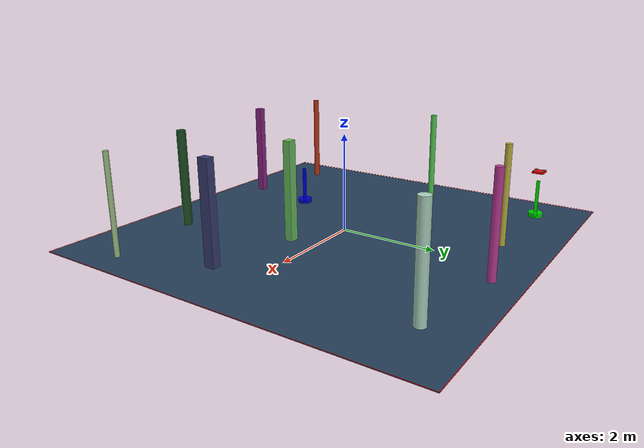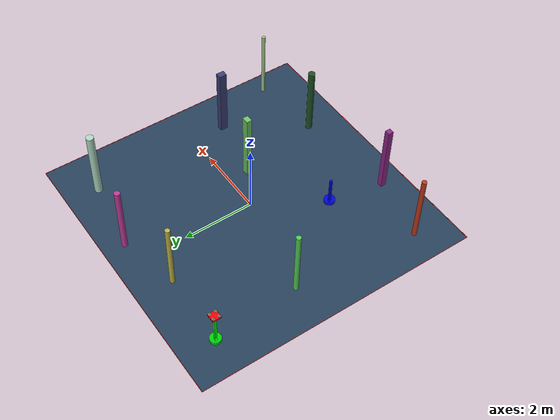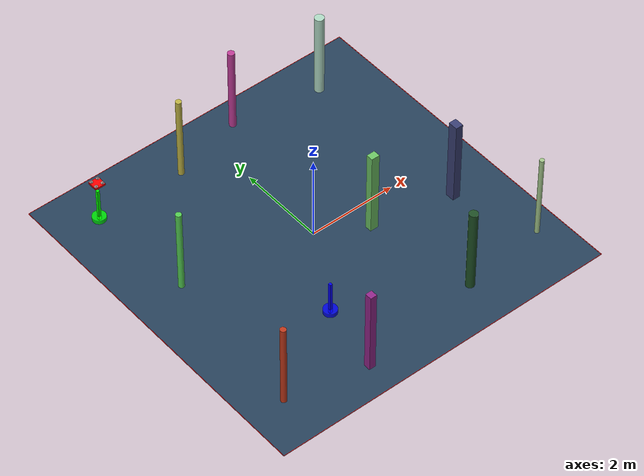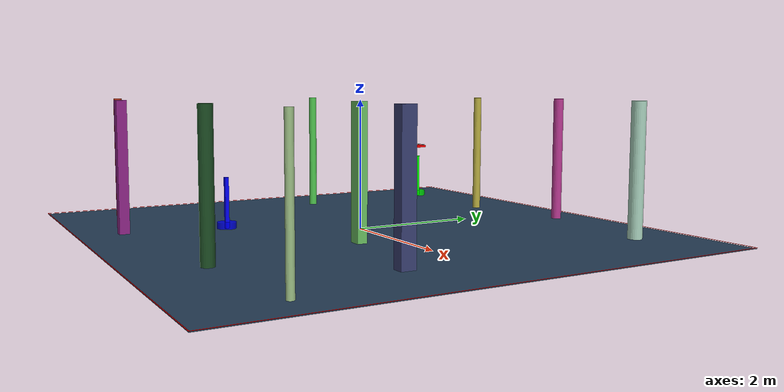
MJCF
<?xml version='1.0' encoding='utf-8'?>
<mujoco model="complex_uav_env">
  <compiler angle="degree" coordinate="local" inertiafromgeom="true" />
  <option integrator="RK4" timestep="0.01" />

  <visual>
    <headlight diffuse="0.6 0.6 0.6" ambient="0.3 0.3 0.3" />
    <rgba haze="0.15 0.25 0.35 1" />
    <global offwidth="2560" offheight="1440" />
  </visual>

  <asset>
    <texture type="skybox" builtin="gradient" rgb1="0.3 0.5 0.7" rgb2="0 0 0" width="512" height="3072" />
    <texture name="grid" type="2d" builtin="checker" rgb1="0.1 0.2 0.3" rgb2="0.2 0.3 0.4" width="512" height="512" />
    <material name="grid" texture="grid" texrepeat="1 1" />
  </asset>

  <worldbody>

    <geom name="ground" type="plane" size="4.0 4.0 0.1" material="grid" />
    <light name="light1" pos="0 0 4" dir="0 0 -1" diffuse="1 1 1" />

    <geom name="start_marker" type="cylinder" size="0.15 0.05" pos="-3.0 3.0 0.05" rgba="0 1 0 0.8" />
    <geom name="start_pole" type="box" size="0.03 0.03 0.4" pos="-3.0 3.0 0.4" rgba="0 1 0 1" />

    <geom name="goal_marker" type="cylinder" size="0.15 0.05" pos="-1.0582167565484162 -1.7956519742017112 0.05" rgba="0 0 1 0.8" />
    <geom name="goal_pole" type="box" size="0.03 0.03 0.4" pos="-1.0582167565484162 -1.7956519742017112 0.4" rgba="0 0 1 1" />

    <body name="chassis" pos="-3.0 3.0 1.0">
      <joint type="free" name="root" />
      <geom type="box" size="0.12 0.12 0.02" rgba="1.0 0.0 0.0 1.0" mass="0.8" />

      <geom type="box" size="0.08 0.01 0.005" pos="0 0 0.01" rgba="0.3 0.3 0.3 1" />
      <geom type="box" size="0.01 0.08 0.005" pos="0 0 0.01" rgba="0.3 0.3 0.3 1" />

      <geom type="cylinder" size="0.015 0.02" pos="0.08 0.08 0.015" rgba="0.2 0.2 0.2 1" />
      <geom type="cylinder" size="0.015 0.02" pos="-0.08 0.08 0.015" rgba="0.2 0.2 0.2 1" />
      <geom type="cylinder" size="0.015 0.02" pos="0.08 -0.08 0.015" rgba="0.2 0.2 0.2 1" />
      <geom type="cylinder" size="0.015 0.02" pos="-0.08 -0.08 0.015" rgba="0.2 0.2 0.2 1" />

      <geom type="cylinder" size="0.04 0.002" pos="0.08 0.08 0.035" rgba="0.7 0.7 0.7 0.8" />
      <geom type="cylinder" size="0.04 0.002" pos="-0.08 0.08 0.035" rgba="0.7 0.7 0.7 0.8" />
      <geom type="cylinder" size="0.04 0.002" pos="0.08 -0.08 0.035" rgba="0.7 0.7 0.7 0.8" />
      <geom type="cylinder" size="0.04 0.002" pos="-0.08 -0.08 0.035" rgba="0.7 0.7 0.7 0.8" />

      <site name="motor1" pos="0.08 0.08 0" size="0.01" />
      <site name="motor2" pos="-0.08 0.08 0" size="0.01" />
      <site name="motor3" pos="0.08 -0.08 0" size="0.01" />
      <site name="motor4" pos="-0.08 -0.08 0" size="0.01" />
    </body>
    <geom name="test_obs_0" type="cylinder" size="0.10520403030689995 1.0" pos="2.6866669671168966 3.072280093023374 1.0" rgba="0.6818552675234316 0.8443836268394398 0.7623144507375996 1.0" />
    <geom name="test_obs_1" type="box" size="0.0857727553426823 0.10772895684457887 1.0" pos="2.8104842231405978 -0.9476814493448804 1.0" rgba="0.22538763564624942 0.24905194680157117 0.4526866230628128 1.0" />
    <geom name="test_obs_2" type="cylinder" size="0.07857392344176946 1.0" pos="0.6768158258422093 3.3952312095326014 1.0" rgba="0.743242796628904 0.22914916665283327 0.5877137334116344 1.0" />
    <geom name="test_obs_3" type="cylinder" size="0.0657950057882152 1.0" pos="-0.9746477635559978 2.9737375894402134 1.0" rgba="0.7441111296766248 0.6972791926745344 0.26172560089830077 1.0" />
    <geom name="test_obs_4" type="box" size="0.09514435842805051 0.07672493290192971 1.0" pos="1.0133762752163715 -0.5805370574022475 1.0" rgba="0.4266231458322086 0.7676844775511931 0.3920156776733015 1.0" />
    <geom name="test_obs_5" type="cylinder" size="0.05133854377072197 1.0" pos="3.4376005375571355 -2.741518169318724 1.0" rgba="0.6284549969973952 0.7620642293924433 0.5334688689083207 1.0" />
    <geom name="test_obs_6" type="cylinder" size="0.06536423471064293 1.0" pos="-2.842794320840128 0.564920943767909 1.0" rgba="0.3238196340916437 0.7960429301607168 0.3205454699053595 1.0" />
    <geom name="test_obs_7" type="cylinder" size="0.06574140451963507 1.0" pos="-3.1493545408870363 -2.9492949874365393 1.0" rgba="0.7427038518517334 0.21444024830294073 0.10312652550758834 1.0" />
    <geom name="test_obs_8" type="box" size="0.07471664420814192 0.07685130285082858 1.0" pos="-1.350726001171815 -3.3206158874424827 1.0" rgba="0.5680242788623957 0.1476148846138294 0.5407645189120184 1.0" />
    <geom name="test_obs_9" type="cylinder" size="0.09573410972638585 1.0" pos="1.4858674712025692 -2.9684049834474173 1.0" rgba="0.11561561143012274 0.3070228340748351 0.14380908843331605 1.0" />
  <geom name="boundary_north" type="box" size="4.0 0.005 0.002" pos="0 4.0 0.002" rgba="1.0 0.0 0.0 1.0" /><geom name="boundary_south" type="box" size="4.0 0.005 0.002" pos="0 -4.0 0.002" rgba="1.0 0.0 0.0 1.0" /><geom name="boundary_east" type="box" size="0.005 4.0 0.002" pos="4.0 0 0.002" rgba="1.0 0.0 0.0 1.0" /><geom name="boundary_west" type="box" size="0.005 4.0 0.002" pos="-4.0 0 0.002" rgba="1.0 0.0 0.0 1.0" /></worldbody>

  <actuator>
    <motor name="m1" gear="0 0 1 0 0 0" site="motor1" />
    <motor name="m2" gear="0 0 1 0 0 0" site="motor2" />
    <motor name="m3" gear="0 0 1 0 0 0" site="motor3" />
    <motor name="m4" gear="0 0 1 0 0 0" site="motor4" />
  </actuator>
</mujoco>
